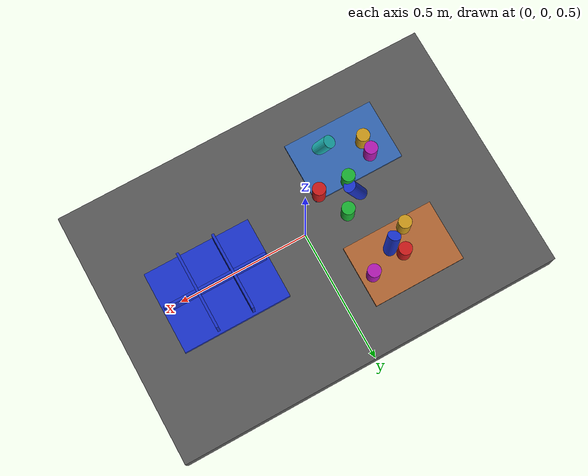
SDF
<?xml version="1.0" ?>
<sdf version="1.9">
  <!-- Standalone M1B scene.  The controller-backed Panda is spawned by the
       existing launch path; this file never alters the frozen M1A cube world. -->
  <world name="industrial_cylinder_v1">
    <physics name="bullet" type="bullet"><max_step_size>0.001</max_step_size><real_time_factor>1.0</real_time_factor></physics>
    <plugin name="gz::sim::systems::Physics" filename="gz-sim-physics-system"><engine><filename>gz-physics-bullet-featherstone-plugin</filename></engine></plugin>
    <plugin name="gz::sim::systems::UserCommands" filename="gz-sim-user-commands-system"/>
    <plugin name="gz::sim::systems::SceneBroadcaster" filename="gz-sim-scene-broadcaster-system"/>
    <plugin name="gz::sim::systems::Sensors" filename="gz-sim-sensors-system"><render_engine>ogre2</render_engine></plugin>
    <gravity>0 0 -9.81</gravity>
    <light type="directional" name="industrial_light"><pose>0 0 5 0 0 0</pose><direction>-0.3 0.2 -0.9</direction><diffuse>0.9 0.9 0.9 1</diffuse></light>
    <model name="industrial_work_table"><static>true</static><link name="link"><pose>0 0 0.4 0 0 0</pose><collision name="collision"><geometry><box><size>1.5 1.0 0.1</size></box></geometry></collision><visual name="visual"><geometry><box><size>1.5 1.0 0.1</size></box></geometry><material><diffuse>0.35 0.35 0.35 1</diffuse></material></visual></link></model>
    <model name="camera_fixture"><static>true</static><link name="camera_rgbd"><pose>-0.80 -0.80 1.40 0 0.77 0.93</pose><sensor name="front_rgbd" type="rgbd_camera"><always_on>1</always_on><update_rate>15</update_rate><topic>/xh/camera/rgbd</topic><camera><horizontal_fov>1.047</horizontal_fov><image><width>640</width><height>480</height><format>R8G8B8</format></image><clip><near>0.1</near><far>4.0</far></clip></camera></sensor></link></model>
    <model name="incoming_zone_a"><static>true</static><link name="link"><pose>-0.28 -0.22 0.455 0 0 0</pose><visual name="visual"><geometry><box><size>0.36 0.24 0.01</size></box></geometry><material><diffuse>0.2 0.4 0.7 1</diffuse></material></visual></link></model>
    <model name="incoming_zone_b"><static>true</static><link name="link"><pose>-0.28 0.22 0.455 0 0 0</pose><visual name="visual"><geometry><box><size>0.36 0.24 0.01</size></box></geometry><material><diffuse>0.7 0.4 0.2 1</diffuse></material></visual></link></model>
    <!-- M1B_RANDOM_PARTS_BEGIN -->
    <model name="cylinder_01"><pose>-0.2807 0.2209 0.5000 0.0000 0.0000 -0.5188</pose><link name="link"><inertial><mass>0.06</mass></inertial><collision name="collision"><geometry><cylinder><radius>0.025</radius><length>0.09</length></cylinder></geometry></collision><visual name="visual"><geometry><cylinder><radius>0.025</radius><length>0.09</length></cylinder></geometry><material><diffuse>0.800 0.100 0.100 1</diffuse><specular>0.15 0.15 0.15 1</specular></material></visual></link></model>
    <model name="cylinder_02"><pose>-0.2372 -0.1101 0.5000 3.1416 0.0000 -3.1312</pose><link name="link"><inertial><mass>0.06</mass></inertial><collision name="collision"><geometry><cylinder><radius>0.025</radius><length>0.09</length></cylinder></geometry></collision><visual name="visual"><geometry><cylinder><radius>0.025</radius><length>0.09</length></cylinder></geometry><material><diffuse>0.100 0.700 0.200 1</diffuse><specular>0.15 0.15 0.15 1</specular></material></visual></link></model>
    <model name="cylinder_03"><pose>-0.2429 -0.0647 0.4800 0.4500 -0.3000 1.4589</pose><link name="link"><inertial><mass>0.06</mass></inertial><collision name="collision"><geometry><cylinder><radius>0.025</radius><length>0.09</length></cylinder></geometry></collision><visual name="visual"><geometry><cylinder><radius>0.025</radius><length>0.09</length></cylinder></geometry><material><diffuse>0.100 0.200 0.800 1</diffuse><specular>0.15 0.15 0.15 1</specular></material></visual></link></model>
    <model name="cylinder_04"><pose>-0.3579 -0.2156 0.5000 0.0000 0.0000 -0.2216</pose><link name="link"><inertial><mass>0.06</mass></inertial><collision name="collision"><geometry><cylinder><radius>0.025</radius><length>0.09</length></cylinder></geometry></collision><visual name="visual"><geometry><cylinder><radius>0.025</radius><length>0.09</length></cylinder></geometry><material><diffuse>0.800 0.600 0.100 1</diffuse><specular>0.15 0.15 0.15 1</specular></material></visual></link></model>
    <model name="cylinder_05"><pose>-0.3592 -0.1604 0.5000 3.1416 0.0000 -1.4553</pose><link name="link"><inertial><mass>0.06</mass></inertial><collision name="collision"><geometry><cylinder><radius>0.025</radius><length>0.09</length></cylinder></geometry></collision><visual name="visual"><geometry><cylinder><radius>0.025</radius><length>0.09</length></cylinder></geometry><material><diffuse>0.700 0.100 0.700 1</diffuse><specular>0.15 0.15 0.15 1</specular></material></visual></link></model>
    <model name="cylinder_06"><pose>-0.2217 -0.2678 0.4800 0.4500 -0.3000 -1.3759</pose><link name="link"><inertial><mass>0.06</mass></inertial><collision name="collision"><geometry><cylinder><radius>0.025</radius><length>0.09</length></cylinder></geometry></collision><visual name="visual"><geometry><cylinder><radius>0.025</radius><length>0.09</length></cylinder></geometry><material><diffuse>0.100 0.700 0.700 1</diffuse><specular>0.15 0.15 0.15 1</specular></material></visual></link></model>
    <model name="cylinder_07"><pose>-0.1206 -0.1163 0.5000 0.0000 0.0000 -2.3666</pose><link name="link"><inertial><mass>0.06</mass></inertial><collision name="collision"><geometry><cylinder><radius>0.025</radius><length>0.09</length></cylinder></geometry></collision><visual name="visual"><geometry><cylinder><radius>0.025</radius><length>0.09</length></cylinder></geometry><material><diffuse>0.800 0.100 0.100 1</diffuse><specular>0.15 0.15 0.15 1</specular></material></visual></link></model>
    <model name="cylinder_08"><pose>-0.1768 -0.0040 0.5000 3.1416 0.0000 0.4218</pose><link name="link"><inertial><mass>0.06</mass></inertial><collision name="collision"><geometry><cylinder><radius>0.025</radius><length>0.09</length></cylinder></geometry></collision><visual name="visual"><geometry><cylinder><radius>0.025</radius><length>0.09</length></cylinder></geometry><material><diffuse>0.100 0.700 0.200 1</diffuse><specular>0.15 0.15 0.15 1</specular></material></visual></link></model>
    <model name="cylinder_09"><pose>-0.2570 0.1730 0.4800 0.4500 -0.3000 -0.2846</pose><link name="link"><inertial><mass>0.06</mass></inertial><collision name="collision"><geometry><cylinder><radius>0.025</radius><length>0.09</length></cylinder></geometry></collision><visual name="visual"><geometry><cylinder><radius>0.025</radius><length>0.09</length></cylinder></geometry><material><diffuse>0.100 0.200 0.800 1</diffuse><specular>0.15 0.15 0.15 1</specular></material></visual></link></model>
    <model name="cylinder_10"><pose>-0.3281 0.1366 0.5000 0.0000 0.0000 2.0368</pose><link name="link"><inertial><mass>0.06</mass></inertial><collision name="collision"><geometry><cylinder><radius>0.025</radius><length>0.09</length></cylinder></geometry></collision><visual name="visual"><geometry><cylinder><radius>0.025</radius><length>0.09</length></cylinder></geometry><material><diffuse>0.800 0.600 0.100 1</diffuse><specular>0.15 0.15 0.15 1</specular></material></visual></link></model>
    <model name="cylinder_11"><pose>-0.1447 0.2368 0.5000 3.1416 0.0000 -0.1476</pose><link name="link"><inertial><mass>0.06</mass></inertial><collision name="collision"><geometry><cylinder><radius>0.025</radius><length>0.09</length></cylinder></geometry></collision><visual name="visual"><geometry><cylinder><radius>0.025</radius><length>0.09</length></cylinder></geometry><material><diffuse>0.700 0.100 0.700 1</diffuse><specular>0.15 0.15 0.15 1</specular></material></visual></link></model>
    <!-- M1B_RANDOM_PARTS_END -->
    <model name="blue_partition_bin"><static>true</static><pose>0.36 0 0.45 0 0 0</pose><link name="link"><collision name="floor"><pose>0 0 0.01 0 0 0</pose><geometry><box><size>0.42 0.32 0.02</size></box></geometry></collision><visual name="floor_visual"><pose>0 0 0.01 0 0 0</pose><geometry><box><size>0.42 0.32 0.02</size></box></geometry><material><diffuse>0.1 0.2 0.8 1</diffuse></material></visual><visual name="row_divider"><pose>0 0 0.06 0 0 0</pose><geometry><box><size>0.40 0.01 0.10</size></box></geometry><material><diffuse>0.1 0.2 0.8 1</diffuse></material></visual><visual name="col_divider_a"><pose>-0.07 0 0.06 0 0 0</pose><geometry><box><size>0.01 0.30 0.10</size></box></geometry><material><diffuse>0.1 0.2 0.8 1</diffuse></material></visual><visual name="col_divider_b"><pose>0.07 0 0.06 0 0 0</pose><geometry><box><size>0.01 0.30 0.10</size></box></geometry><material><diffuse>0.1 0.2 0.8 1</diffuse></material></visual></link></model>
    <!-- Reserved only: second table, bin transport corridor, stackable-bin
         collision volume, and second arm mounting namespace. -->
  </world>
</sdf>
